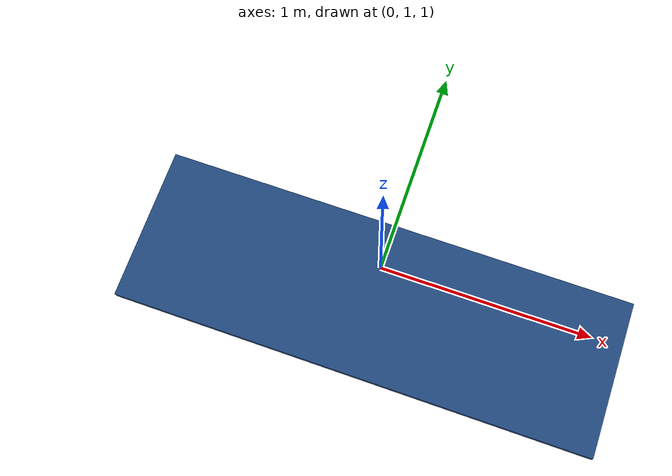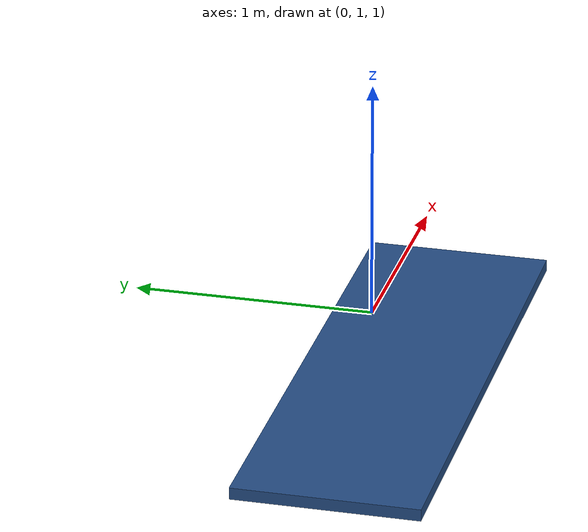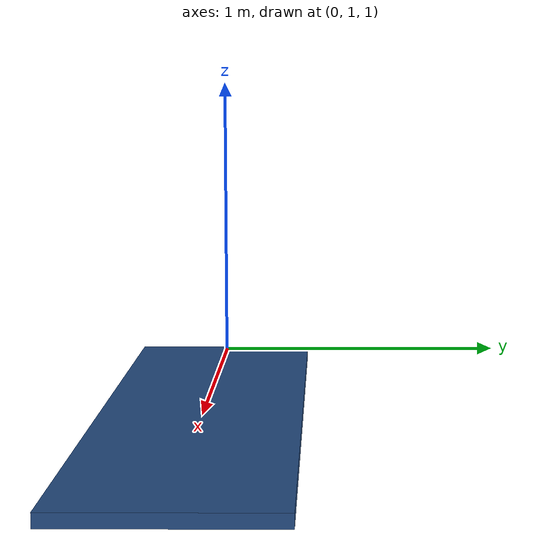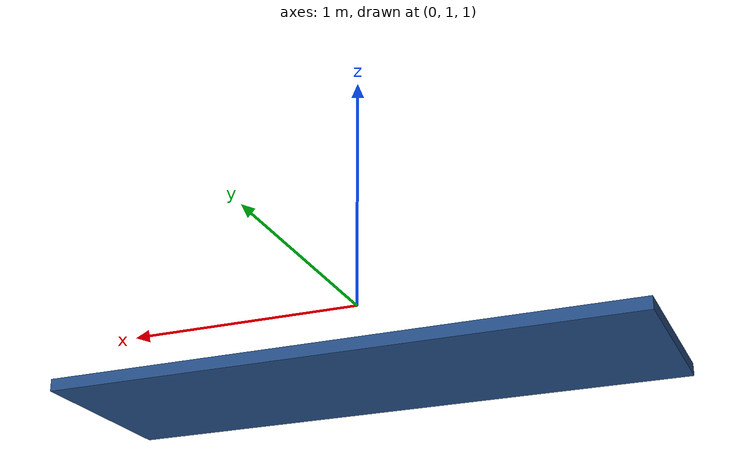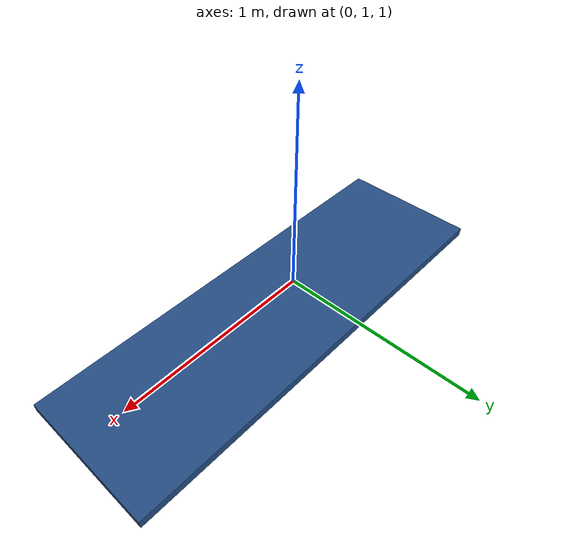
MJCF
<mujoco model="simpleTable">
   <asset>
        <material name="ven_blue" rgba=".14 .30 .52 1" reflectance="10" shininess=".1"  />
    </asset>
    <worldbody>
        <body name='obj_table' pos="0 0.9 0.735">
            <include file="assets/simpleTable/simpleMarbleTable_body.xml" />
        </body>
    </worldbody>

</mujoco>

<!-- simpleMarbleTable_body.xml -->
<mujocoinclude>

    <body name="simpleMarbleTable" pos="0 0 0" >
        <geom type="box" size=" 1.2 .385 .025" pos="0 0 0" mass="400"  material="ven_blue"/>
    </body>
</mujocoinclude>
